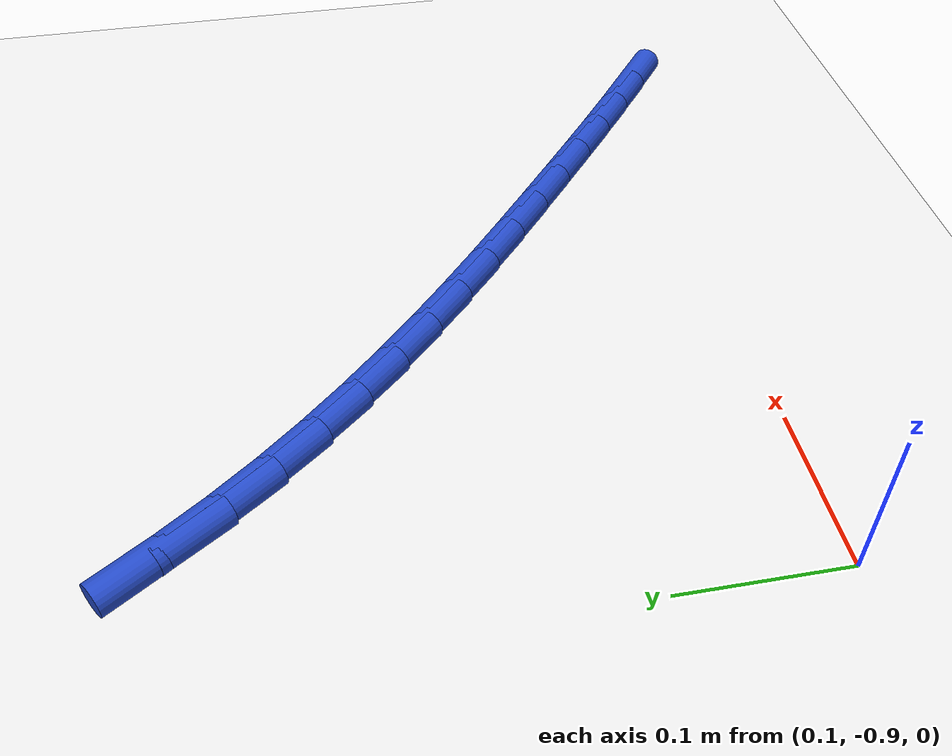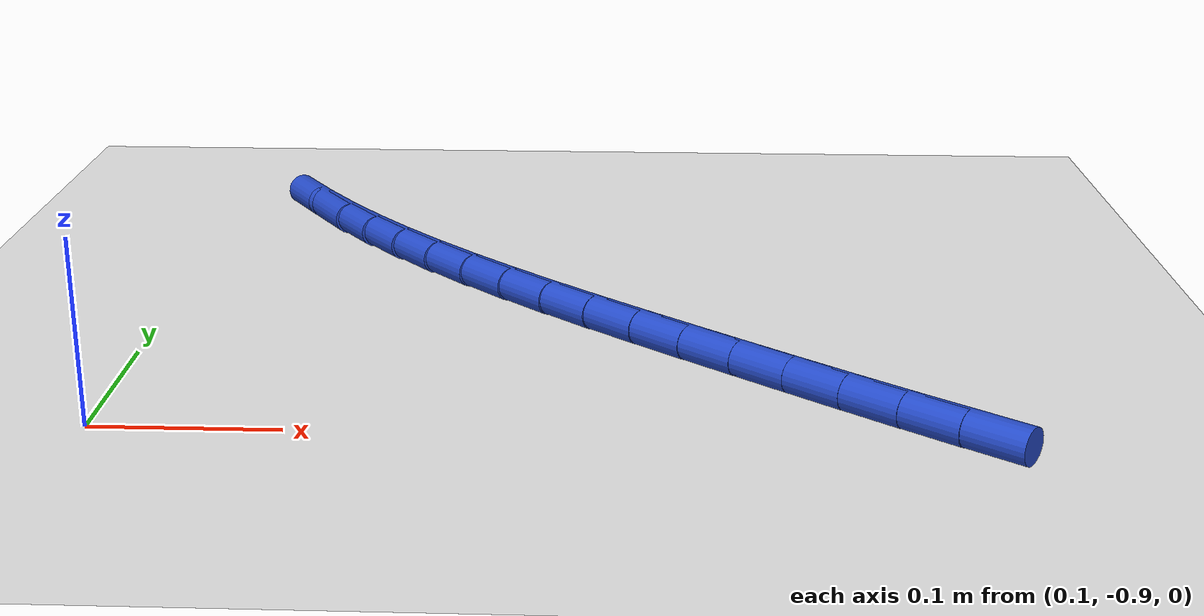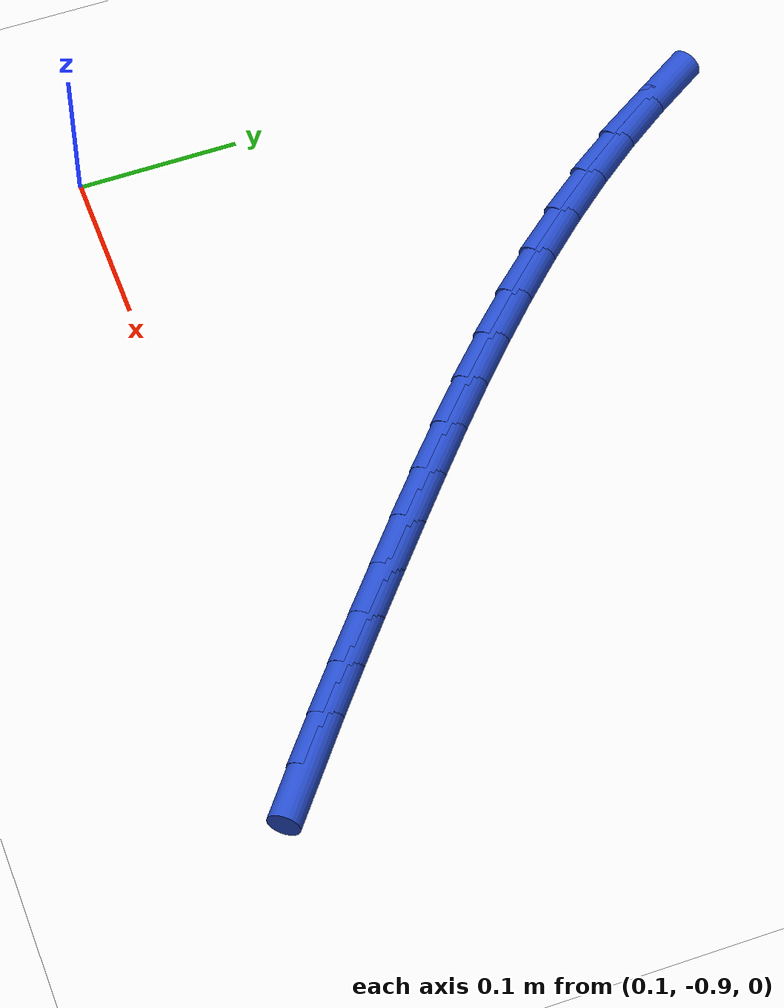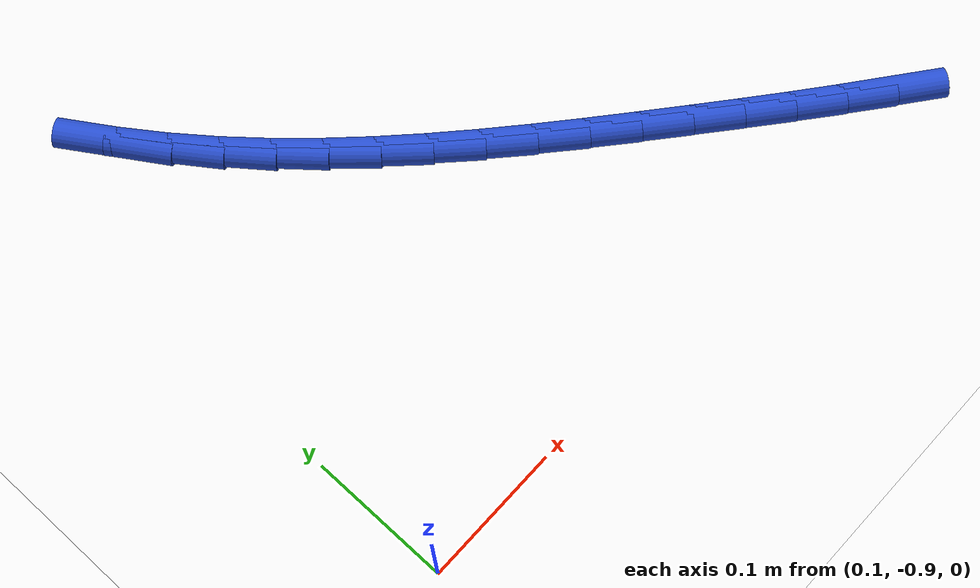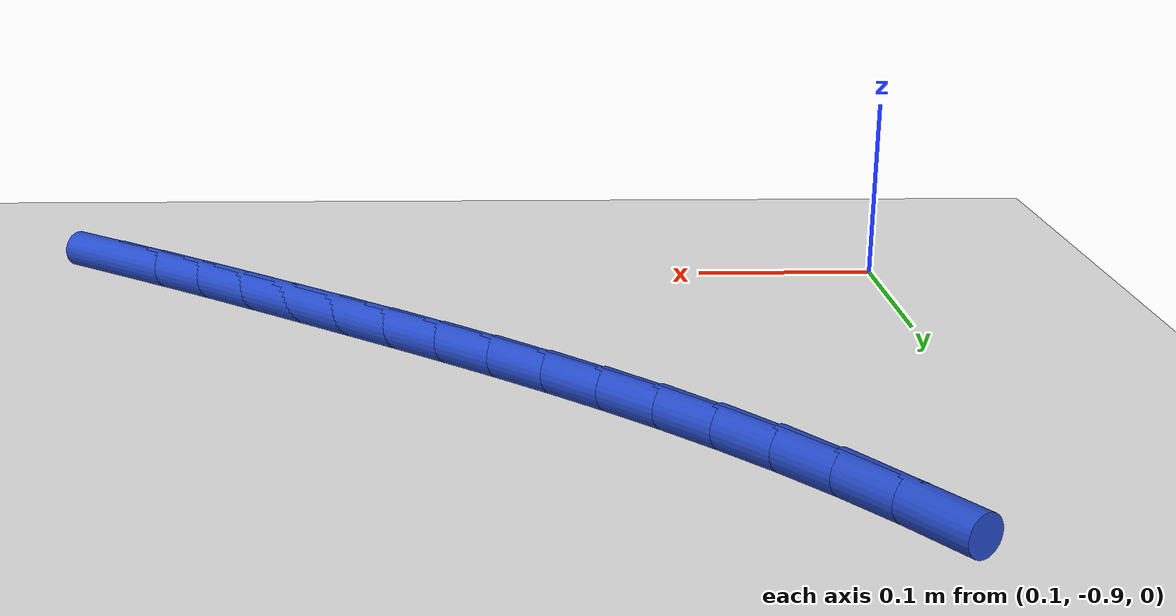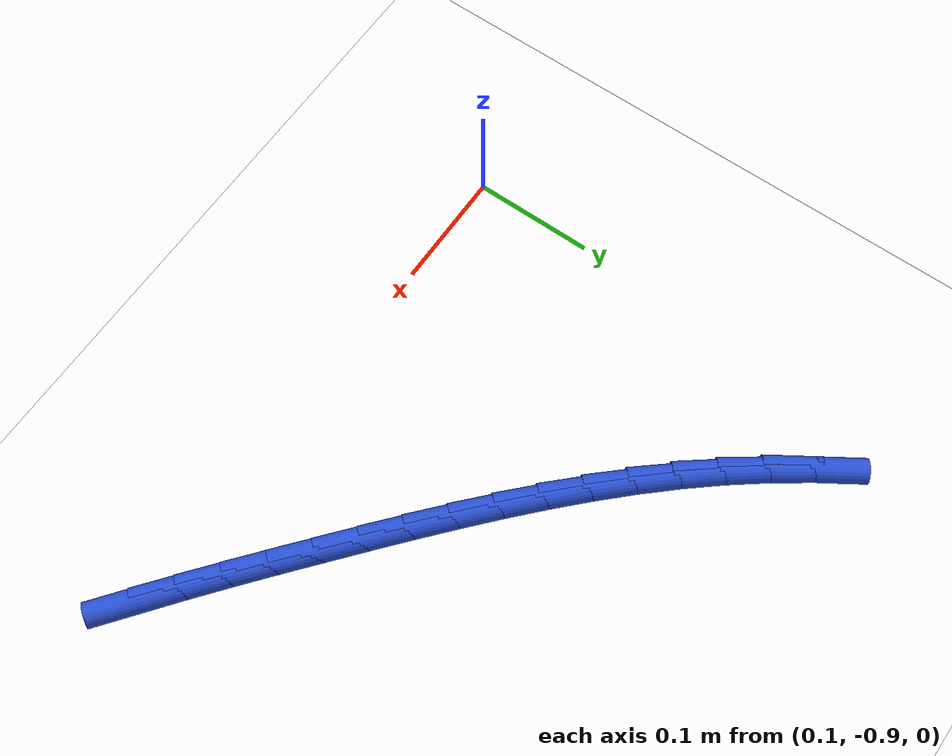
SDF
<sdf version="1.6">
 <world name="default">
  <model name="ground_plane">
   <static>1</static>
   <link name="link">
    <collision name="collision">
     <geometry><plane><normal>0 0 1</normal><size>100 100</size></plane></geometry>
     <surface><friction><ode><mu>100</mu><mu2>50</mu2></ode></friction></surface>
    </collision>
    <visual name="visual">
     <cast_shadows>0</cast_shadows>
     <geometry><plane><normal>0 0 1</normal><size>100 100</size></plane></geometry>
     <material>
      <script><uri>file://media/materials/scripts/gazebo.material</uri><name>Gazebo/WhiteGlow</name></script>
     </material>
    </visual>
   </link>
  </model>
  <model name="line">
   <link name="link_168">
    <pose>0.5340165167506241 -0.9017691170162339 0.01 0 1.57 -0.6585050552825132</pose>
    <collision name="collision">
     <geometry><cylinder><radius>0.01</radius><length>0.08</length></cylinder></geometry>
    </collision>
    <visual name="visual">
     <material>
      <script><name>Gazebo/Blue</name><uri>file://media/materials/scripts/gazebo.material</uri></script>
     </material>
     <geometry><cylinder><radius>0.01</radius><length>0.08</length></cylinder></geometry>
    </visual>
   </link>
   <link name="link_169">
    <pose>0.5070272588498984 -0.880887196774699 0.01 0 1.57 -0.6725429865102323</pose>
    <collision name="collision">
     <geometry><cylinder><radius>0.01</radius><length>0.08</length></cylinder></geometry>
    </collision>
    <visual name="visual">
     <material>
      <script><name>Gazebo/Blue</name><uri>file://media/materials/scripts/gazebo.material</uri></script>
     </material>
     <geometry><cylinder><radius>0.01</radius><length>0.08</length></cylinder></geometry>
    </visual>
   </link>
   <link name="link_170">
    <pose>0.4802973960665559 -0.8595994893081322 0.01 0 1.57 -0.6831241659307881</pose>
    <collision name="collision">
     <geometry><cylinder><radius>0.01</radius><length>0.08</length></cylinder></geometry>
    </collision>
    <visual name="visual">
     <material>
      <script><name>Gazebo/Blue</name><uri>file://media/materials/scripts/gazebo.material</uri></script>
     </material>
     <geometry><cylinder><radius>0.01</radius><length>0.08</length></cylinder></geometry>
    </visual>
   </link>
   <link name="link_171">
    <pose>0.4537563405818038 -0.8379992731533101 0.01 0 1.57 -0.6902639078879175</pose>
    <collision name="collision">
     <geometry><cylinder><radius>0.01</radius><length>0.08</length></cylinder></geometry>
    </collision>
    <visual name="visual">
     <material>
      <script><name>Gazebo/Blue</name><uri>file://media/materials/scripts/gazebo.material</uri></script>
     </material>
     <geometry><cylinder><radius>0.01</radius><length>0.08</length></cylinder></geometry>
    </visual>
   </link>
   <link name="link_172">
    <pose>0.42733350457684927 -0.8161798268470087 0.01 0 1.57 -0.6944121415682121</pose>
    <collision name="collision">
     <geometry><cylinder><radius>0.01</radius><length>0.08</length></cylinder></geometry>
    </collision>
    <visual name="visual">
     <material>
      <script><name>Gazebo/Blue</name><uri>file://media/materials/scripts/gazebo.material</uri></script>
     </material>
     <geometry><cylinder><radius>0.01</radius><length>0.08</length></cylinder></geometry>
    </visual>
   </link>
   <link name="link_173">
    <pose>0.4009691043366596 -0.7942240587714653 0.01 0 1.57 -0.7001689969144615</pose>
    <collision name="collision">
     <geometry><cylinder><radius>0.01</radius><length>0.08</length></cylinder></geometry>
    </collision>
    <visual name="visual">
     <material>
      <script><name>Gazebo/Blue</name><uri>file://media/materials/scripts/gazebo.material</uri></script>
     </material>
     <geometry><cylinder><radius>0.01</radius><length>0.08</length></cylinder></geometry>
    </visual>
   </link>
   <link name="link_174">
    <pose>0.37471764732989804 -0.7721051766559428 0.01 0 1.57 -0.7103055994044056</pose>
    <collision name="collision">
     <geometry><cylinder><radius>0.01</radius><length>0.08</length></cylinder></geometry>
    </collision>
    <visual name="visual">
     <material>
      <script><name>Gazebo/Blue</name><uri>file://media/materials/scripts/gazebo.material</uri></script>
     </material>
     <geometry><cylinder><radius>0.01</radius><length>0.08</length></cylinder></geometry>
    </visual>
   </link>
   <link name="link_175">
    <pose>0.348702340966297 -0.7497304476369928 0.01 0 1.57 -0.7248923785422527</pose>
    <collision name="collision">
     <geometry><cylinder><radius>0.01</radius><length>0.08</length></cylinder></geometry>
    </collision>
    <visual name="visual">
     <material>
      <script><name>Gazebo/Blue</name><uri>file://media/materials/scripts/gazebo.material</uri></script>
     </material>
     <geometry><cylinder><radius>0.01</radius><length>0.08</length></cylinder></geometry>
    </visual>
   </link>
   <link name="link_176">
    <pose>0.3230473312588206 -0.7270062379471406 0.01 0 1.57 -0.7439793675291202</pose>
    <collision name="collision">
     <geometry><cylinder><radius>0.01</radius><length>0.08</length></cylinder></geometry>
    </collision>
    <visual name="visual">
     <material>
      <script><name>Gazebo/Blue</name><uri>file://media/materials/scripts/gazebo.material</uri></script>
     </material>
     <geometry><cylinder><radius>0.01</radius><length>0.08</length></cylinder></geometry>
    </visual>
   </link>
   <link name="link_177">
    <pose>0.29787676422043363 -0.7038389138189121 0.01 0 1.57 -0.7676255120208403</pose>
    <collision name="collision">
     <geometry><cylinder><radius>0.01</radius><length>0.08</length></cylinder></geometry>
    </collision>
    <visual name="visual">
     <material>
      <script><name>Gazebo/Blue</name><uri>file://media/materials/scripts/gazebo.material</uri></script>
     </material>
     <geometry><cylinder><radius>0.01</radius><length>0.08</length></cylinder></geometry>
    </visual>
   </link>
   <link name="link_178">
    <pose>0.2733147858641005 -0.6801348414848338 0.01 0 1.57 -0.7958872275561735</pose>
    <collision name="collision">
     <geometry><cylinder><radius>0.01</radius><length>0.08</length></cylinder></geometry>
    </collision>
    <visual name="visual">
     <material>
      <script><name>Gazebo/Blue</name><uri>file://media/materials/scripts/gazebo.material</uri></script>
     </material>
     <geometry><cylinder><radius>0.01</radius><length>0.08</length></cylinder></geometry>
    </visual>
   </link>
   <link name="link_179">
    <pose>0.2494855422027857 -0.6558003871774307 0.01 0 1.57 -0.8288035491802537</pose>
    <collision name="collision">
     <geometry><cylinder><radius>0.01</radius><length>0.08</length></cylinder></geometry>
    </collision>
    <visual name="visual">
     <material>
      <script><name>Gazebo/Blue</name><uri>file://media/materials/scripts/gazebo.material</uri></script>
     </material>
     <geometry><cylinder><radius>0.01</radius><length>0.08</length></cylinder></geometry>
    </visual>
   </link>
   <link name="link_180">
    <pose>0.2265131792494537 -0.6307419171292292 0.01 0 1.57 -0.8663777726400804</pose>
    <collision name="collision">
     <geometry><cylinder><radius>0.01</radius><length>0.08</length></cylinder></geometry>
    </collision>
    <visual name="visual">
     <material>
      <script><name>Gazebo/Blue</name><uri>file://media/materials/scripts/gazebo.material</uri></script>
     </material>
     <geometry><cylinder><radius>0.01</radius><length>0.08</length></cylinder></geometry>
    </visual>
   </link>
   <link name="link_181">
    <pose>0.2045218430170689 -0.6048657975727547 0.01 0 1.57 -0.9085085785549561</pose>
    <collision name="collision">
     <geometry><cylinder><radius>0.01</radius><length>0.08</length></cylinder></geometry>
    </collision>
    <visual name="visual">
     <material>
      <script><name>Gazebo/Blue</name><uri>file://media/materials/scripts/gazebo.material</uri></script>
     </material>
     <geometry><cylinder><radius>0.01</radius><length>0.08</length></cylinder></geometry>
    </visual>
   </link>
   <link name="link_182">
    <pose>0.18363462597097965 -0.5780796625266513 0.01 0 1.57 -0.9526995453030092</pose>
    <collision name="collision">
     <geometry><cylinder><radius>0.01</radius><length>0.08</length></cylinder></geometry>
    </collision>
    <visual name="visual">
     <material>
      <script><name>Gazebo/Blue</name><uri>file://media/materials/scripts/gazebo.material</uri></script>
     </material>
     <geometry><cylinder><radius>0.01</radius><length>0.08</length></cylinder></geometry>
    </visual>
   </link>
   <link name="link_183">
    <pose>0.16392141359997978 -0.5503551726042767 0.01 0 1.57 -0.9954640154431478</pose>
    <collision name="collision">
     <geometry><cylinder><radius>0.01</radius><length>0.08</length></cylinder></geometry>
    </collision>
    <visual name="visual">
     <material>
      <script><name>Gazebo/Blue</name><uri>file://media/materials/scripts/gazebo.material</uri></script>
     </material>
     <geometry><cylinder><radius>0.01</radius><length>0.08</length></cylinder></geometry>
    </visual>
   </link>
  </model>
 </world>
</sdf>
